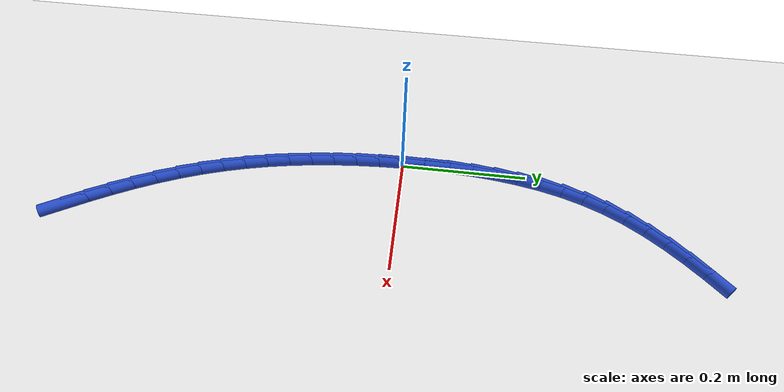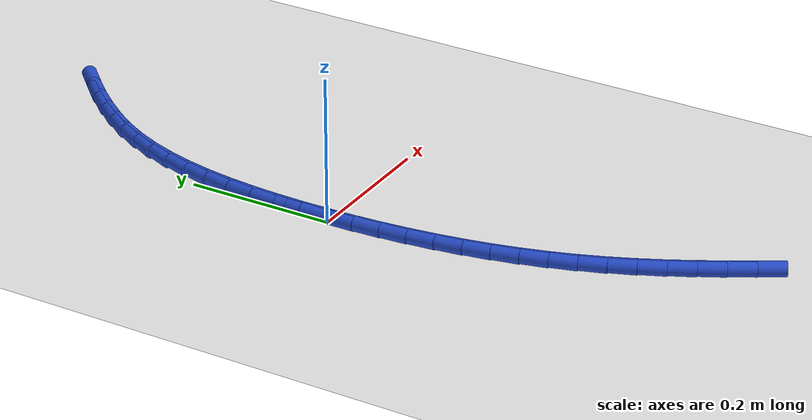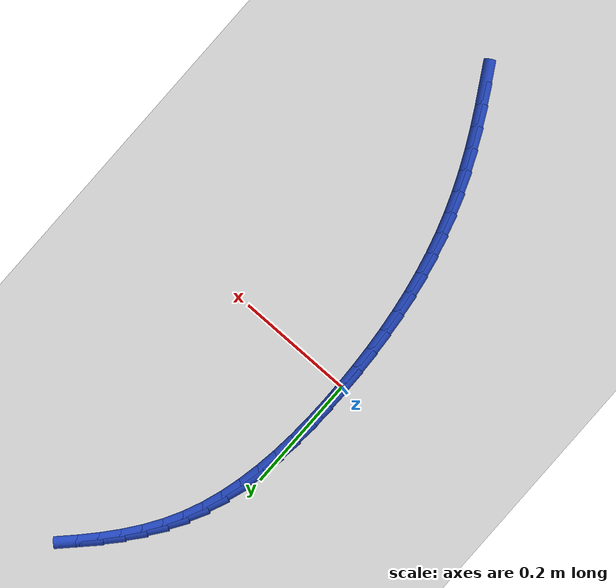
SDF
<sdf version="1.6">
 <world name="default">
  <model name="ground_plane">
   <static>1</static>
   <link name="link">
    <collision name="collision">
     <geometry><plane><normal>0 0 1</normal><size>100 100</size></plane></geometry>
     <surface><friction><ode><mu>100</mu><mu2>50</mu2></ode></friction></surface>
    </collision>
    <visual name="visual">
     <cast_shadows>0</cast_shadows>
     <geometry><plane><normal>0 0 1</normal><size>100 100</size></plane></geometry>
     <material>
      <script><uri>file://media/materials/scripts/gazebo.material</uri><name>Gazebo/WhiteGlow</name></script>
     </material>
    </visual>
   </link>
  </model>
  <model name="line">
   <link name="link_0">
    <pose>-9.974659986866641e-18 -1.3877787807814457e-17 0.01 0 1.57 -1.5626560660773847</pose>
    <collision name="collision">
     <geometry><cylinder><radius>0.01</radius><length>0.08</length></cylinder></geometry>
    </collision>
    <visual name="visual">
     <material>
      <script><name>Gazebo/Blue</name><uri>file://media/materials/scripts/gazebo.material</uri></script>
     </material>
     <geometry><cylinder><radius>0.01</radius><length>0.08</length></cylinder></geometry>
    </visual>
   </link>
   <link name="link_1">
    <pose>-0.00030532635874819746 0.03750735084304829 0.01 0 1.57 1.549180423849574</pose>
    <collision name="collision">
     <geometry><cylinder><radius>0.01</radius><length>0.08</length></cylinder></geometry>
    </collision>
    <visual name="visual">
     <material>
      <script><name>Gazebo/Blue</name><uri>file://media/materials/scripts/gazebo.material</uri></script>
     </material>
     <geometry><cylinder><radius>0.01</radius><length>0.08</length></cylinder></geometry>
    </visual>
   </link>
   <link name="link_2">
    <pose>0.0005069069783849129 0.07507722847647917 0.01 0 1.57 1.5143218891924144</pose>
    <collision name="collision">
     <geometry><cylinder><radius>0.01</radius><length>0.08</length></cylinder></geometry>
    </collision>
    <visual name="visual">
     <material>
      <script><name>Gazebo/Blue</name><uri>file://media/materials/scripts/gazebo.material</uri></script>
     </material>
     <geometry><cylinder><radius>0.01</radius><length>0.08</length></cylinder></geometry>
    </visual>
   </link>
   <link name="link_3">
    <pose>0.002622778778997677 0.11250339834736747 0.01 0 1.57 1.473853161207346</pose>
    <collision name="collision">
     <geometry><cylinder><radius>0.01</radius><length>0.08</length></cylinder></geometry>
    </collision>
    <visual name="visual">
     <material>
      <script><name>Gazebo/Blue</name><uri>file://media/materials/scripts/gazebo.material</uri></script>
     </material>
     <geometry><cylinder><radius>0.01</radius><length>0.08</length></cylinder></geometry>
    </visual>
   </link>
   <link name="link_4">
    <pose>0.0062283678106884455 0.14957962590278812 0.01 0 1.57 1.4271759812119489</pose>
    <collision name="collision">
     <geometry><cylinder><radius>0.01</radius><length>0.08</length></cylinder></geometry>
    </collision>
    <visual name="visual">
     <material>
      <script><name>Gazebo/Blue</name><uri>file://media/materials/scripts/gazebo.material</uri></script>
     </material>
     <geometry><cylinder><radius>0.01</radius><length>0.08</length></cylinder></geometry>
    </visual>
   </link>
   <link name="link_5">
    <pose>0.01150975284105557 0.1860996765898159 0.01 0 1.57 1.373623108460975</pose>
    <collision name="collision">
     <geometry><cylinder><radius>0.01</radius><length>0.08</length></cylinder></geometry>
    </collision>
    <visual name="visual">
     <material>
      <script><name>Gazebo/Blue</name><uri>file://media/materials/scripts/gazebo.material</uri></script>
     </material>
     <geometry><cylinder><radius>0.01</radius><length>0.08</length></cylinder></geometry>
    </visual>
   </link>
   <link name="link_6">
    <pose>0.018653012637697402 0.22185731585552562 0.01 0 1.57 1.3124992903946913</pose>
    <collision name="collision">
     <geometry><cylinder><radius>0.01</radius><length>0.08</length></cylinder></geometry>
    </collision>
    <visual name="visual">
     <material>
      <script><name>Gazebo/Blue</name><uri>file://media/materials/scripts/gazebo.material</uri></script>
     </material>
     <geometry><cylinder><radius>0.01</radius><length>0.08</length></cylinder></geometry>
    </visual>
   </link>
   <link name="link_7">
    <pose>0.02784422596821229 0.2566463091469922 0.01 0 1.57 1.2431525621845227</pose>
    <collision name="collision">
     <geometry><cylinder><radius>0.01</radius><length>0.08</length></cylinder></geometry>
    </collision>
    <visual name="visual">
     <material>
      <script><name>Gazebo/Blue</name><uri>file://media/materials/scripts/gazebo.material</uri></script>
     </material>
     <geometry><cylinder><radius>0.01</radius><length>0.08</length></cylinder></geometry>
    </visual>
   </link>
   <link name="link_8">
    <pose>0.0392694716001986 0.2902604219112905 0.01 0 1.57 1.1650866859020828</pose>
    <collision name="collision">
     <geometry><cylinder><radius>0.01</radius><length>0.08</length></cylinder></geometry>
    </collision>
    <visual name="visual">
     <material>
      <script><name>Gazebo/Blue</name><uri>file://media/materials/scripts/gazebo.material</uri></script>
     </material>
     <geometry><cylinder><radius>0.01</radius><length>0.08</length></cylinder></geometry>
    </visual>
   </link>
   <link name="link_9">
    <pose>0.05311482830125466 0.3224934195954953 0.01 0 1.57 1.08047660575736</pose>
    <collision name="collision">
     <geometry><cylinder><radius>0.01</radius><length>0.08</length></cylinder></geometry>
    </collision>
    <visual name="visual">
     <material>
      <script><name>Gazebo/Blue</name><uri>file://media/materials/scripts/gazebo.material</uri></script>
     </material>
     <geometry><cylinder><radius>0.01</radius><length>0.08</length></cylinder></geometry>
    </visual>
   </link>
   <link name="link_10">
    <pose>0.06950334716734584 0.35319509186845555 0.01 0 1.57 1.0016460030227365</pose>
    <collision name="collision">
     <geometry><cylinder><radius>0.01</radius><length>0.08</length></cylinder></geometry>
    </collision>
    <visual name="visual">
     <material>
      <script><name>Gazebo/Blue</name><uri>file://media/materials/scripts/gazebo.material</uri></script>
     </material>
     <geometry><cylinder><radius>0.01</radius><length>0.08</length></cylinder></geometry>
    </visual>
   </link>
   <link name="link_11">
    <pose>0.0882466670813143 0.38249203740114734 0.01 0 1.57 0.933342731683411</pose>
    <collision name="collision">
     <geometry><cylinder><radius>0.01</radius><length>0.08</length></cylinder></geometry>
    </collision>
    <visual name="visual">
     <material>
      <script><name>Gazebo/Blue</name><uri>file://media/materials/scripts/gazebo.material</uri></script>
     </material>
     <geometry><cylinder><radius>0.01</radius><length>0.08</length></cylinder></geometry>
    </visual>
   </link>
   <link name="link_12">
    <pose>0.10906041836883569 0.4105961952326668 0.01 0 1.57 0.8761231536649013</pose>
    <collision name="collision">
     <geometry><cylinder><radius>0.01</radius><length>0.08</length></cylinder></geometry>
    </collision>
    <visual name="visual">
     <material>
      <script><name>Gazebo/Blue</name><uri>file://media/materials/scripts/gazebo.material</uri></script>
     </material>
     <geometry><cylinder><radius>0.01</radius><length>0.08</length></cylinder></geometry>
    </visual>
   </link>
   <link name="link_13">
    <pose>0.13166020420967026 0.4377195285316511 0.01 0 1.57 0.8300223372190902</pose>
    <collision name="collision">
     <geometry><cylinder><radius>0.01</radius><length>0.08</length></cylinder></geometry>
    </collision>
    <visual name="visual">
     <material>
      <script><name>Gazebo/Blue</name><uri>file://media/materials/scripts/gazebo.material</uri></script>
     </material>
     <geometry><cylinder><radius>0.01</radius><length>0.08</length></cylinder></geometry>
    </visual>
   </link>
   <link name="link_14">
    <pose>0.15576162778357813 0.46407400046673697 0.01 0 1.57 0.7947669130897883</pose>
    <collision name="collision">
     <geometry><cylinder><radius>0.01</radius><length>0.08</length></cylinder></geometry>
    </collision>
    <visual name="visual">
     <material>
      <script><name>Gazebo/Blue</name><uri>file://media/materials/scripts/gazebo.material</uri></script>
     </material>
     <geometry><cylinder><radius>0.01</radius><length>0.08</length></cylinder></geometry>
    </visual>
   </link>
   <link name="link_175">
    <pose>0.14850496146768247 -0.5171506344044258 0.01 0 1.57 -1.0391110393525715</pose>
    <collision name="collision">
     <geometry><cylinder><radius>0.01</radius><length>0.08</length></cylinder></geometry>
    </collision>
    <visual name="visual">
     <material>
      <script><name>Gazebo/Blue</name><uri>file://media/materials/scripts/gazebo.material</uri></script>
     </material>
     <geometry><cylinder><radius>0.01</radius><length>0.08</length></cylinder></geometry>
    </visual>
   </link>
   <link name="link_176">
    <pose>0.12998451124824845 -0.4856630749727064 0.01 0 1.57 -1.0647565739914087</pose>
    <collision name="collision">
     <geometry><cylinder><radius>0.01</radius><length>0.08</length></cylinder></geometry>
    </collision>
    <visual name="visual">
     <material>
      <script><name>Gazebo/Blue</name><uri>file://media/materials/scripts/gazebo.material</uri></script>
     </material>
     <geometry><cylinder><radius>0.01</radius><length>0.08</length></cylinder></geometry>
    </visual>
   </link>
   <link name="link_177">
    <pose>0.11234444810972163 -0.4538316219662348 0.01 0 1.57 -1.094416537502049</pose>
    <collision name="collision">
     <geometry><cylinder><radius>0.01</radius><length>0.08</length></cylinder></geometry>
    </collision>
    <visual name="visual">
     <material>
      <script><name>Gazebo/Blue</name><uri>file://media/materials/scripts/gazebo.material</uri></script>
     </material>
     <geometry><cylinder><radius>0.01</radius><length>0.08</length></cylinder></geometry>
    </visual>
   </link>
   <link name="link_178">
    <pose>0.09572224414358714 -0.4216191760340697 0.01 0 1.57 -1.1281642770537648</pose>
    <collision name="collision">
     <geometry><cylinder><radius>0.01</radius><length>0.08</length></cylinder></geometry>
    </collision>
    <visual name="visual">
     <material>
      <script><name>Gazebo/Blue</name><uri>file://media/materials/scripts/gazebo.material</uri></script>
     </material>
     <geometry><cylinder><radius>0.01</radius><length>0.08</length></cylinder></geometry>
    </visual>
   </link>
   <link name="link_179">
    <pose>0.08025537144133041 -0.3889886378252697 0.01 0 1.57 -1.1660457332483367</pose>
    <collision name="collision">
     <geometry><cylinder><radius>0.01</radius><length>0.08</length></cylinder></geometry>
    </collision>
    <visual name="visual">
     <material>
      <script><name>Gazebo/Blue</name><uri>file://media/materials/scripts/gazebo.material</uri></script>
     </material>
     <geometry><cylinder><radius>0.01</radius><length>0.08</length></cylinder></geometry>
    </visual>
   </link>
   <link name="link_180">
    <pose>0.06608130209443583 -0.35590290798889235 0.01 0 1.57 -1.2080616120078544</pose>
    <collision name="collision">
     <geometry><cylinder><radius>0.01</radius><length>0.08</length></cylinder></geometry>
    </collision>
    <visual name="visual">
     <material>
      <script><name>Gazebo/Blue</name><uri>file://media/materials/scripts/gazebo.material</uri></script>
     </material>
     <geometry><cylinder><radius>0.01</radius><length>0.08</length></cylinder></geometry>
    </visual>
   </link>
   <link name="link_181">
    <pose>0.05333749627628914 -0.3223248909559702 0.01 0 1.57 -1.2529164315244368</pose>
    <collision name="collision">
     <geometry><cylinder><radius>0.01</radius><length>0.08</length></cylinder></geometry>
    </collision>
    <visual name="visual">
     <material>
      <script><name>Gazebo/Blue</name><uri>file://media/materials/scripts/gazebo.material</uri></script>
     </material>
     <geometry><cylinder><radius>0.01</radius><length>0.08</length></cylinder></geometry>
    </visual>
   </link>
   <link name="link_182">
    <pose>0.04211926271519403 -0.2882308670866756 0.01 0 1.57 -1.2964806084362026</pose>
    <collision name="collision">
     <geometry><cylinder><radius>0.01</radius><length>0.08</length></cylinder></geometry>
    </collision>
    <visual name="visual">
     <material>
      <script><name>Gazebo/Blue</name><uri>file://media/materials/scripts/gazebo.material</uri></script>
     </material>
     <geometry><cylinder><radius>0.01</radius><length>0.08</length></cylinder></geometry>
    </visual>
   </link>
   <link name="link_183">
    <pose>0.03238518821396542 -0.2536405027457109 0.01 0 1.57 -1.3378146123868215</pose>
    <collision name="collision">
     <geometry><cylinder><radius>0.01</radius><length>0.08</length></cylinder></geometry>
    </collision>
    <visual name="visual">
     <material>
      <script><name>Gazebo/Blue</name><uri>file://media/materials/scripts/gazebo.material</uri></script>
     </material>
     <geometry><cylinder><radius>0.01</radius><length>0.08</length></cylinder></geometry>
    </visual>
   </link>
   <link name="link_184">
    <pose>0.02406618800615536 -0.21858224532412135 0.01 0 1.57 -1.3768304643962648</pose>
    <collision name="collision">
     <geometry><cylinder><radius>0.01</radius><length>0.08</length></cylinder></geometry>
    </collision>
    <visual name="visual">
     <material>
      <script><name>Gazebo/Blue</name><uri>file://media/materials/scripts/gazebo.material</uri></script>
     </material>
     <geometry><cylinder><radius>0.01</radius><length>0.08</length></cylinder></geometry>
    </visual>
   </link>
   <link name="link_185">
    <pose>0.017093177325315925 -0.18308454221295226 0.01 0 1.57 -1.4134796352470838</pose>
    <collision name="collision">
     <geometry><cylinder><radius>0.01</radius><length>0.08</length></cylinder></geometry>
    </collision>
    <visual name="visual">
     <material>
      <script><name>Gazebo/Blue</name><uri>file://media/materials/scripts/gazebo.material</uri></script>
     </material>
     <geometry><cylinder><radius>0.01</radius><length>0.08</length></cylinder></geometry>
    </visual>
   </link>
   <link name="link_186">
    <pose>0.011397071404999274 -0.14717584080324975 0.01 0 1.57 -1.447747101539371</pose>
    <collision name="collision">
     <geometry><cylinder><radius>0.01</radius><length>0.08</length></cylinder></geometry>
    </collision>
    <visual name="visual">
     <material>
      <script><name>Gazebo/Blue</name><uri>file://media/materials/scripts/gazebo.material</uri></script>
     </material>
     <geometry><cylinder><radius>0.01</radius><length>0.08</length></cylinder></geometry>
    </visual>
   </link>
   <link name="link_187">
    <pose>0.006908785478757217 -0.11088458848605753 0.01 0 1.57 -1.4796451058770301</pose>
    <collision name="collision">
     <geometry><cylinder><radius>0.01</radius><length>0.08</length></cylinder></geometry>
    </collision>
    <visual name="visual">
     <material>
      <script><name>Gazebo/Blue</name><uri>file://media/materials/scripts/gazebo.material</uri></script>
     </material>
     <geometry><cylinder><radius>0.01</radius><length>0.08</length></cylinder></geometry>
    </visual>
   </link>
   <link name="link_188">
    <pose>0.0035592347801419507 -0.07423923265242166 0.01 0 1.57 -1.5092070801166642</pose>
    <collision name="collision">
     <geometry><cylinder><radius>0.01</radius><length>0.08</length></cylinder></geometry>
    </collision>
    <visual name="visual">
     <material>
      <script><name>Gazebo/Blue</name><uri>file://media/materials/scripts/gazebo.material</uri></script>
     </material>
     <geometry><cylinder><radius>0.01</radius><length>0.08</length></cylinder></geometry>
    </visual>
   </link>
   <link name="link_189">
    <pose>0.0012793345427055238 -0.03726822069338742 0.01 0 1.57 -1.5364820409667275</pose>
    <collision name="collision">
     <geometry><cylinder><radius>0.01</radius><length>0.08</length></cylinder></geometry>
    </collision>
    <visual name="visual">
     <material>
      <script><name>Gazebo/Blue</name><uri>file://media/materials/scripts/gazebo.material</uri></script>
     </material>
     <geometry><cylinder><radius>0.01</radius><length>0.08</length></cylinder></geometry>
    </visual>
   </link>
   <link name="link_190">
    <pose>-6.071532165918825e-18 -1.3183898417423734e-16 0.01 0 1.57 -1.5615296346268386</pose>
    <collision name="collision">
     <geometry><cylinder><radius>0.01</radius><length>0.08</length></cylinder></geometry>
    </collision>
    <visual name="visual">
     <material>
      <script><name>Gazebo/Blue</name><uri>file://media/materials/scripts/gazebo.material</uri></script>
     </material>
     <geometry><cylinder><radius>0.01</radius><length>0.08</length></cylinder></geometry>
    </visual>
   </link>
   <link name="link_191">
    <pose>-0.00034785361442258005 0.03753698203669489 0.01 0 1.57 -1.5615296346268386</pose>
    <collision name="collision">
     <geometry><cylinder><radius>0.01</radius><length>0.08</length></cylinder></geometry>
    </collision>
    <visual name="visual">
     <material>
      <script><name>Gazebo/Blue</name><uri>file://media/materials/scripts/gazebo.material</uri></script>
     </material>
     <geometry><cylinder><radius>0.01</radius><length>0.08</length></cylinder></geometry>
    </visual>
   </link>
  </model>
 </world>
</sdf>
